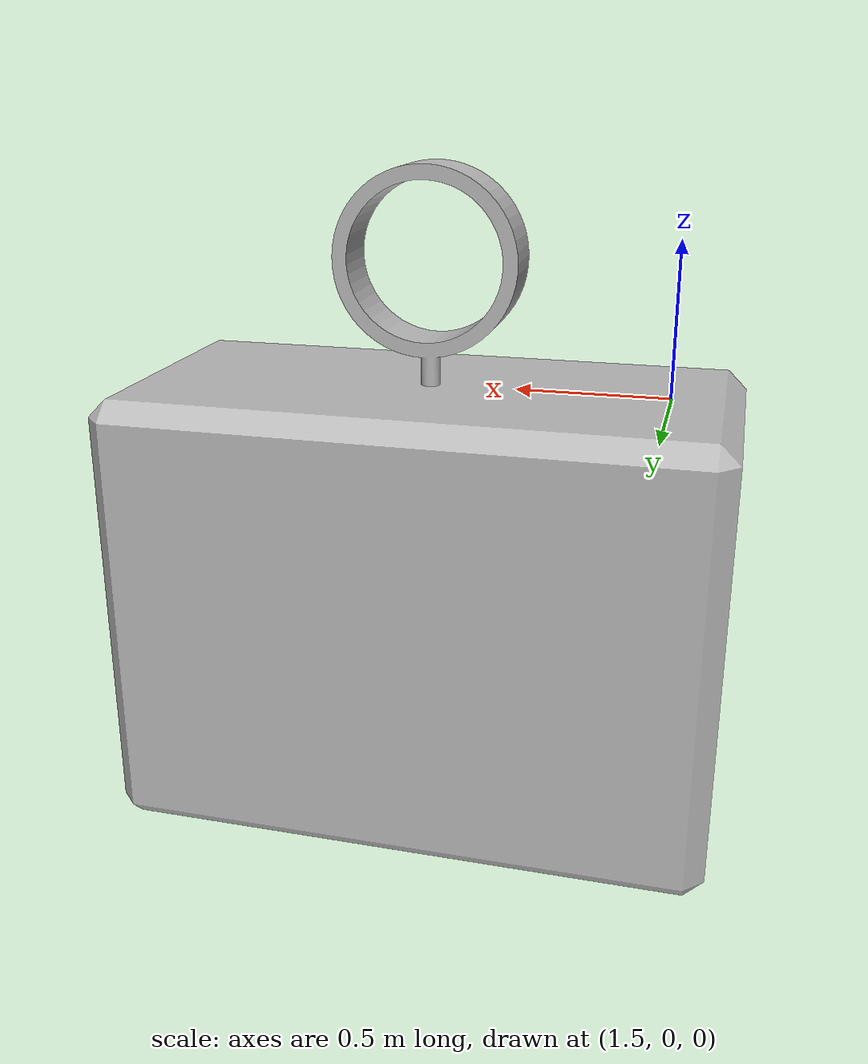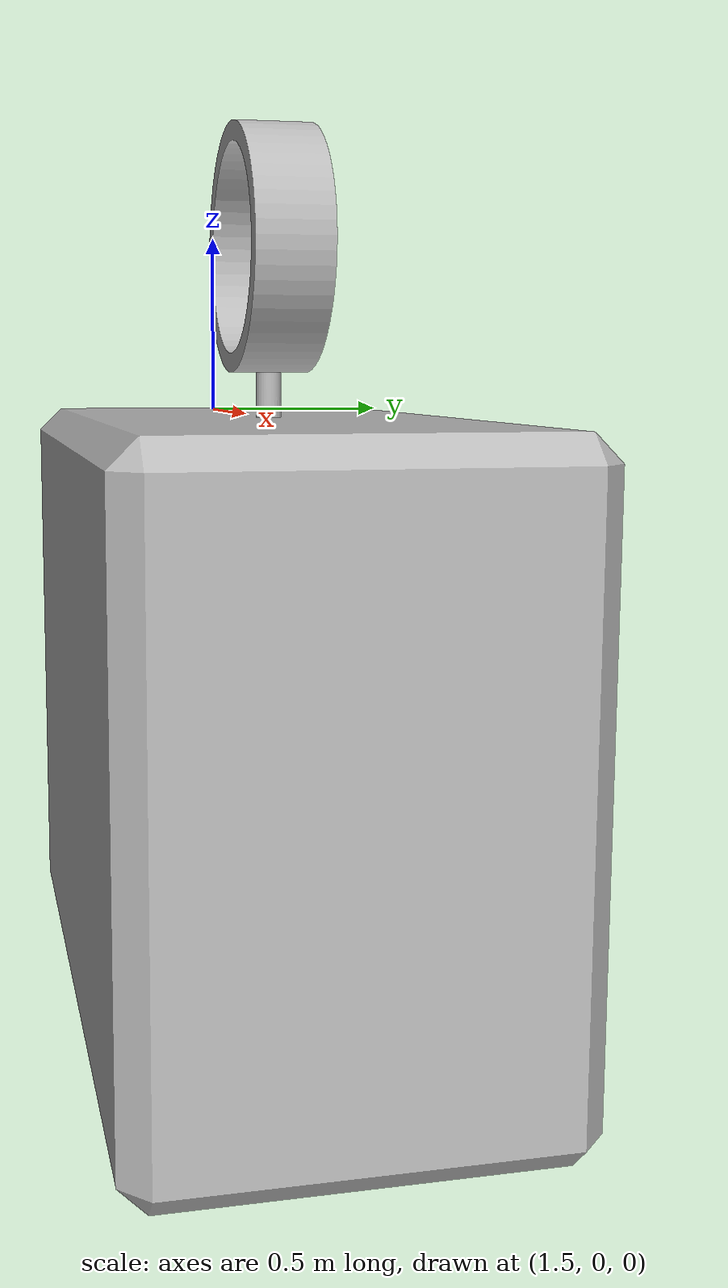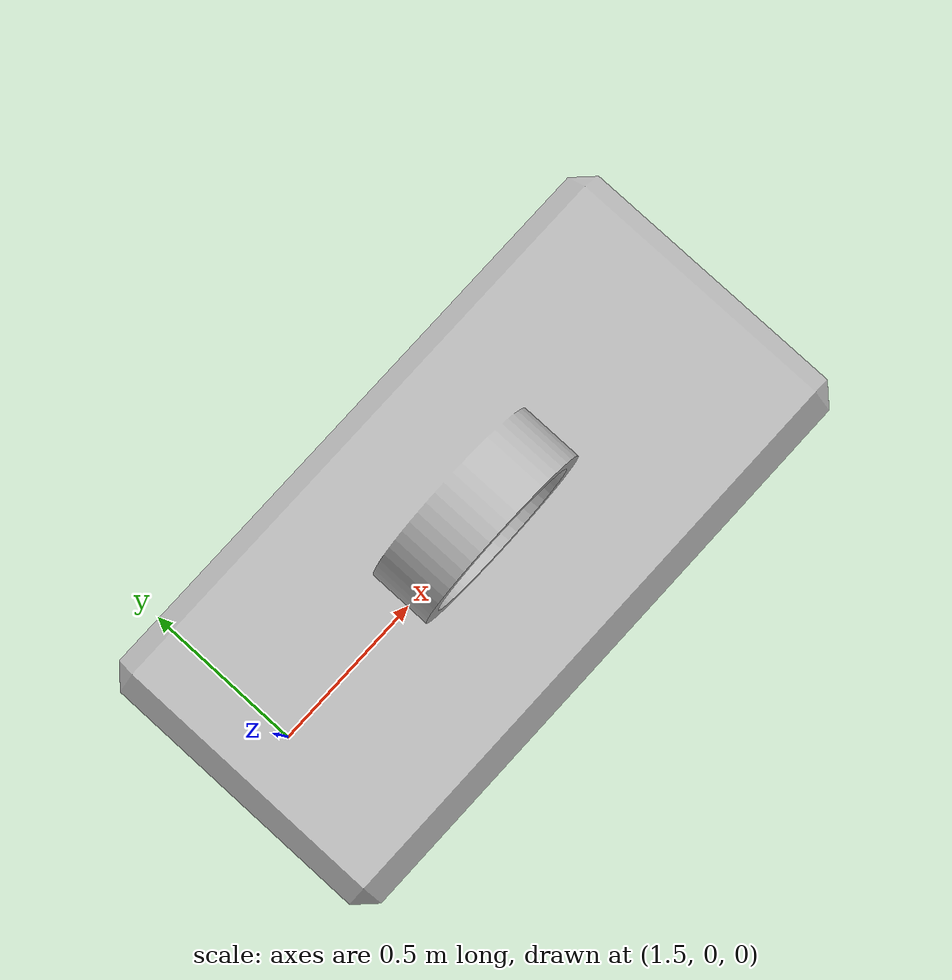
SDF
<sdf version="1.6">
  <model name="fragments_10lb">
    <link name="link">
    <visual name='visual'>
      <geometry>
        <mesh>
          <uri>model://fragments_10lb/meshes/fragments_10lb.stl</uri>
	  <scale>0.01 0.01 0.01</scale>
        </mesh>
      </geometry>
    </visual>

    <collision name='collision'>
      <geometry>
        <mesh>
          <uri>model://fragments_10lb/meshes/fragments_10lb.stl</uri>
	        <scale>0.01 0.01 0.01</scale>
        </mesh>
      </geometry>
    </collision>

    </link>
  </model>
</sdf>
